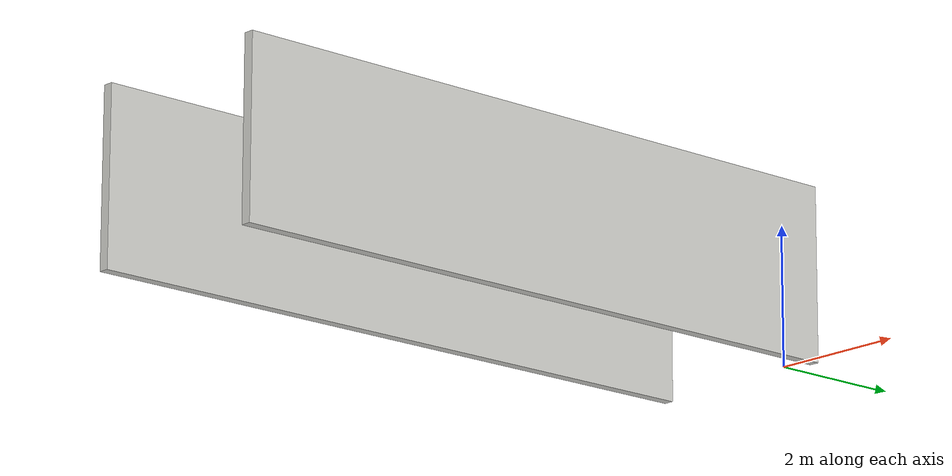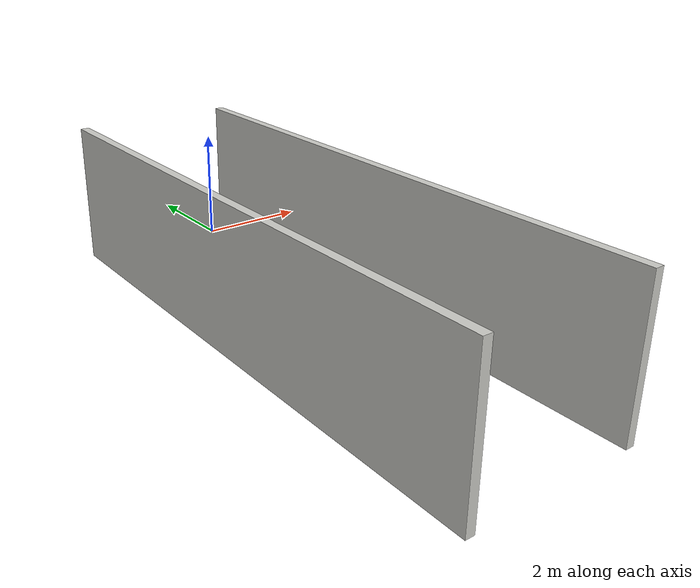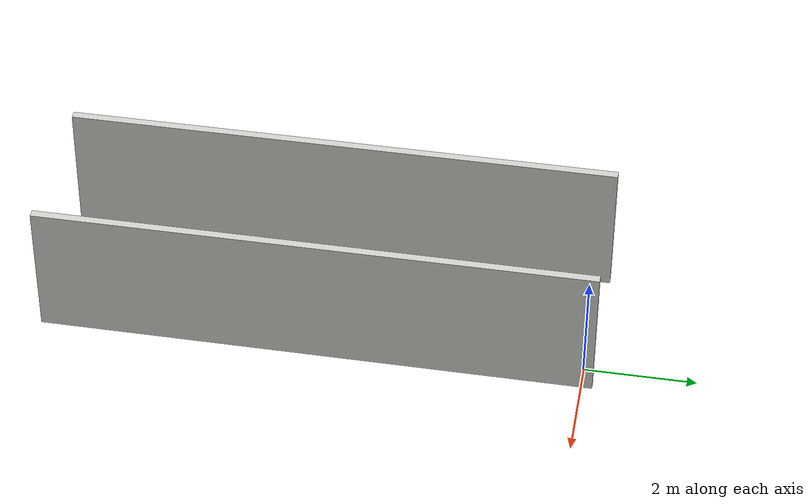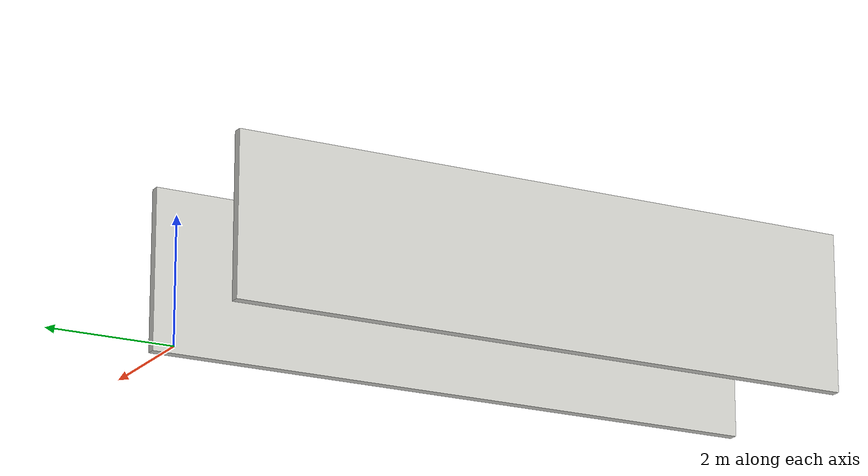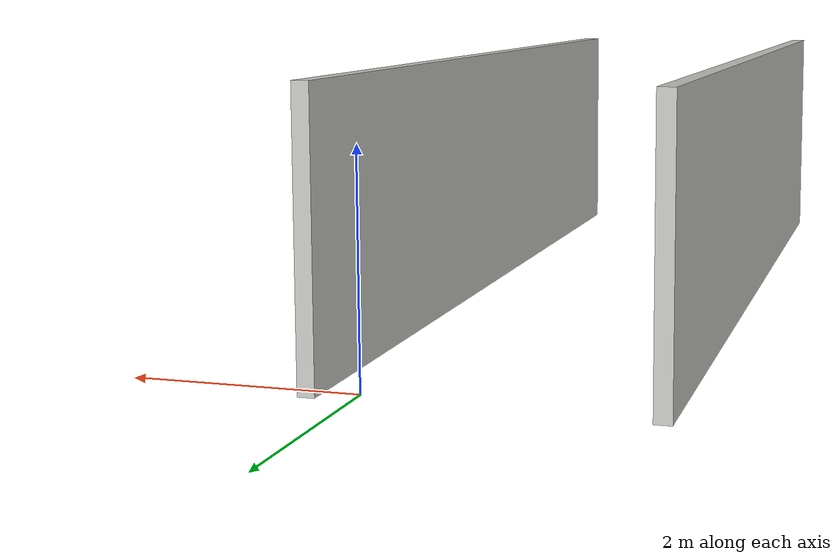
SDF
<?xml version='1.0'?>
<sdf version='1.6'>
  <model name='model_corridor'>
    <pose frame=''>-1.04015 -4.80454 0 0 -0 0</pose>
    <link name='Wall_1'>
      <collision name='Wall_1_Collision'>
        <geometry>
          <box>
            <size>10 0.15 2.5</size>
          </box>
        </geometry>
        <pose frame=''>0 0 1.25 0 -0 0</pose>
      </collision>
      <visual name='Wall_1_Visual'>
        <pose frame=''>0 0 1.25 0 -0 0</pose>
        <geometry>
          <box>
            <size>10 0.15 2.5</size>
          </box>
        </geometry>
        <material>
          <script>
            <uri>file://media/materials/scripts/gazebo.material</uri>
            <name>Gazebo/CeilingTiled</name>
          </script>
          <ambient>1 1 1 1</ambient>
        </material>
        <meta>
          <layer>0</layer>
        </meta>
      </visual>
      <pose frame=''>-1.425 0 0 0 -0 1.5708</pose>
    </link>
    <link name='Wall_3'>
      <collision name='Wall_3_Collision'>
        <geometry>
          <box>
            <size>10 0.15 2.5</size>
          </box>
        </geometry>
        <pose frame=''>0 0 1.25 0 -0 0</pose>
      </collision>
      <visual name='Wall_3_Visual'>
        <pose frame=''>0 0 1.25 0 -0 0</pose>
        <geometry>
          <box>
            <size>10 0.15 2.5</size>
          </box>
        </geometry>
        <material>
          <script>
            <uri>file://media/materials/scripts/gazebo.material</uri>
            <name>Gazebo/CeilingTiled</name>
          </script>
          <ambient>1 1 1 1</ambient>
        </material>
        <meta>
          <layer>0</layer>
        </meta>
      </visual>
      <pose frame=''>1.425 0 0 0 -0 -1.5708</pose>
    </link>
    <static>1</static>
  </model>
</sdf>
